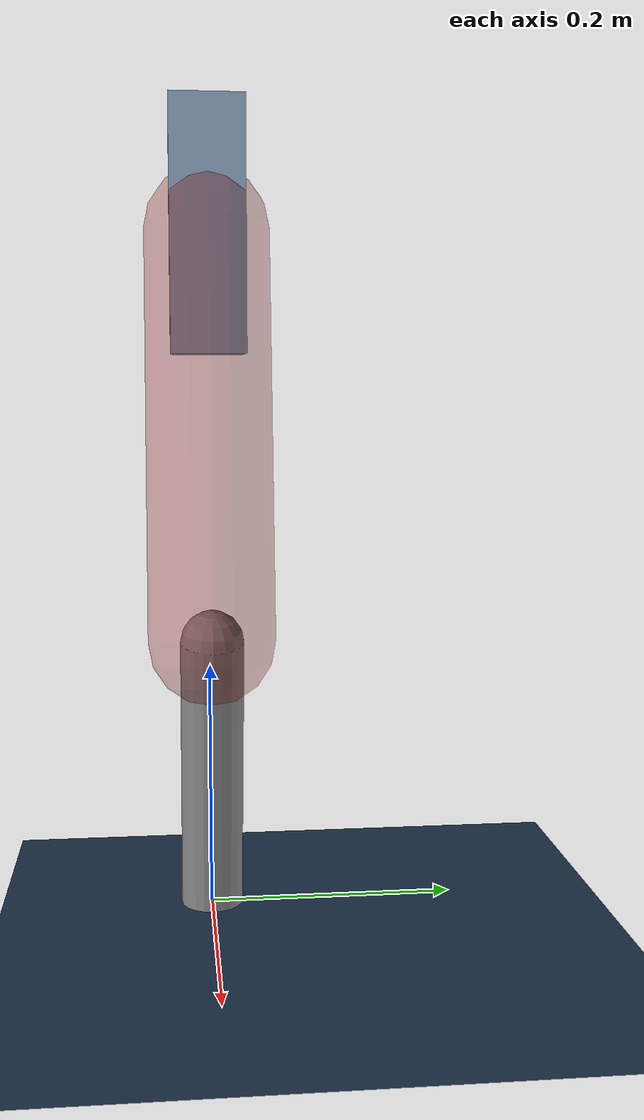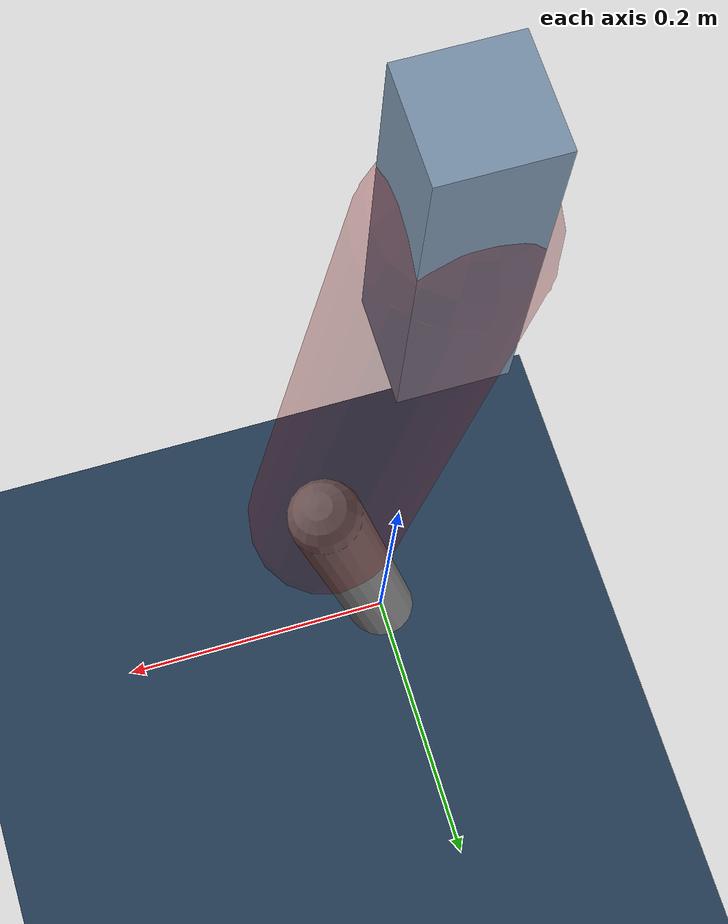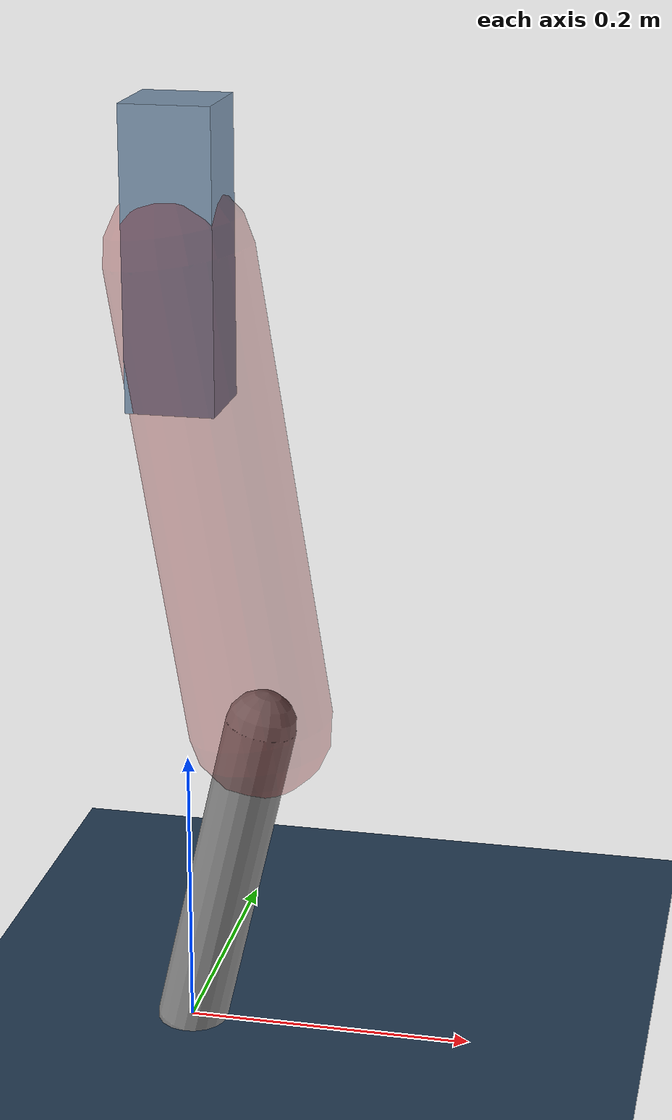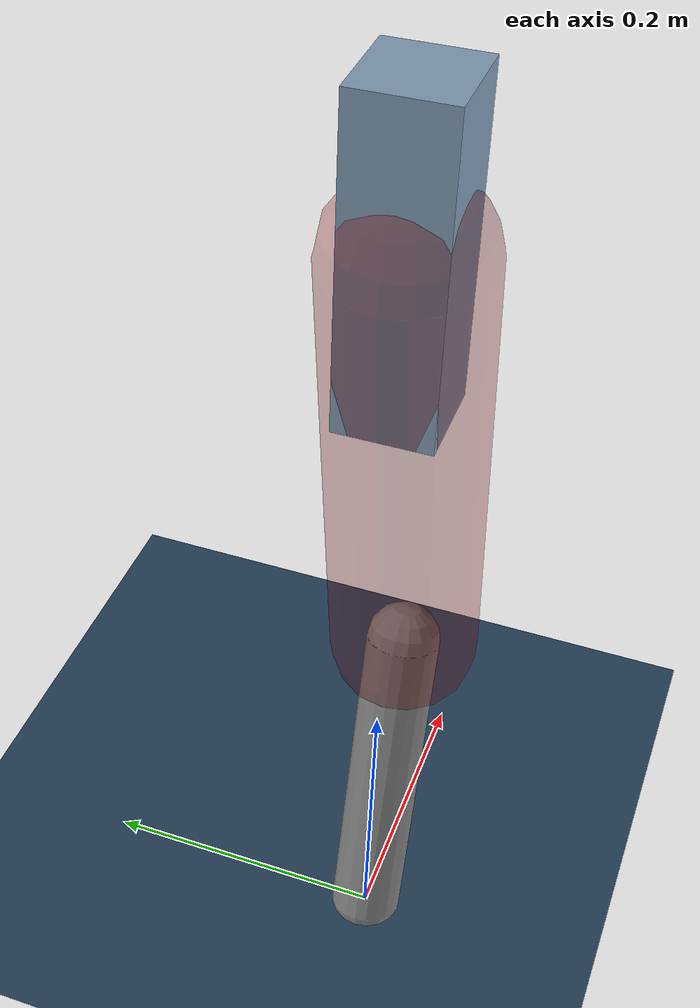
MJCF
<mujoco model="Hopper2D">
	<compiler inertiafromgeom="true" angle="radian" />
	<option timestep="0.001" integrator="implicit" cone="elliptic" solver="Newton" tolerance="1e-10" />

	<default>
		<geom contype="1" conaffinity="1" condim="3" friction="2 0.005 0.0001" solref="0.005 1" />
		<joint limited="true" damping="0.1" />
	</default>

	<asset>
		<texture name="skybox" type="skybox" builtin="gradient" rgb1=".4 .6 .8" rgb2="0 0 0" width="800" height="800" />
		<texture name="grid" type="2d" builtin="checker" rgb1=".1 .2 .3" rgb2=".2 .3 .4" width="300" height="300" mark="edge" markrgb=".2 .3 .4" />
		<material name="ground" texture="grid" texrepeat="1 1" texuniform="true" reflectance="0.1" />
		<material name="leg" rgba="0.5 0.6 0.7 1" />
	</asset>

	<worldbody>

		<geom name="floor" type="plane" size="5 5 0.25" material="ground" />

		<light directional="false" diffuse="0.8 0.8 0.8" specular="0.3 0.3 0.3" pos="0 0 2" dir="0 0 -1" />
		<light mode="targetbodycom" target="base" directional="false" diffuse="0.8 0.8 0.8" specular="0.3 0.3 0.3" pos="0 0 2" dir="0 0 -1" />

		<camera name="fixed" pos="0 -2 1" xyaxes="1 0 0 0 0 1" />
		<camera name="tracking" mode="trackcom" pos="0 -3 1" />

		<body name="root" pos="0 0 0.5548346823850567">
			<joint name="slide_x" type="slide" axis="1 0 0" range="-100 100" />
			<joint name="slide_z" type="slide" axis="0 0 1" range="0 10" />

			<body name="base" pos="0 0 0">
				<geom name="torso" type="box" size="0.03 0.03 0.1" mass="4.561" material="leg" />

				<body name="link1" pos="0 0 0" euler="0 1.4117475064708438 0">
					<joint type="hinge" axis="0 -1 0" pos="0 0 0" name="hinge1" limited="true" range="-3.14 3.14" stiffness="0" damping="0.1" />
					<geom name="thigh" type="capsule" fromto="0 0 0 0.3292580766887393 0 0" size="0.05" rgba="0.5 0 0 0.3" mass="1.0687968070595961" />

					<body name="link2" pos="0.3292580766887393 0 0" euler="0 0.3822592423544385 0">
						<joint type="hinge" axis="0 -1 0" pos="0 0 0" name="hinge2" limited="true" range="-3.14 3.14" stiffness="0" damping="0.1" />
						<geom name="shank" type="capsule" fromto="0 0 0 0.2355766056963175 0 0" size="0.025" mass="0.43061894512668575" />

					</body>
				</body>
			</body>
		</body>
	</worldbody>

	<actuator>
		<motor name="torque1" joint="hinge1" ctrlrange="-265.26652124582927 265.26652124582927" ctrllimited="true" gear="1" />
		<motor name="torque2" joint="hinge2" ctrlrange="-80.720352749188 80.720352749188" ctrllimited="true" gear="1" />
	</actuator>
</mujoco>
